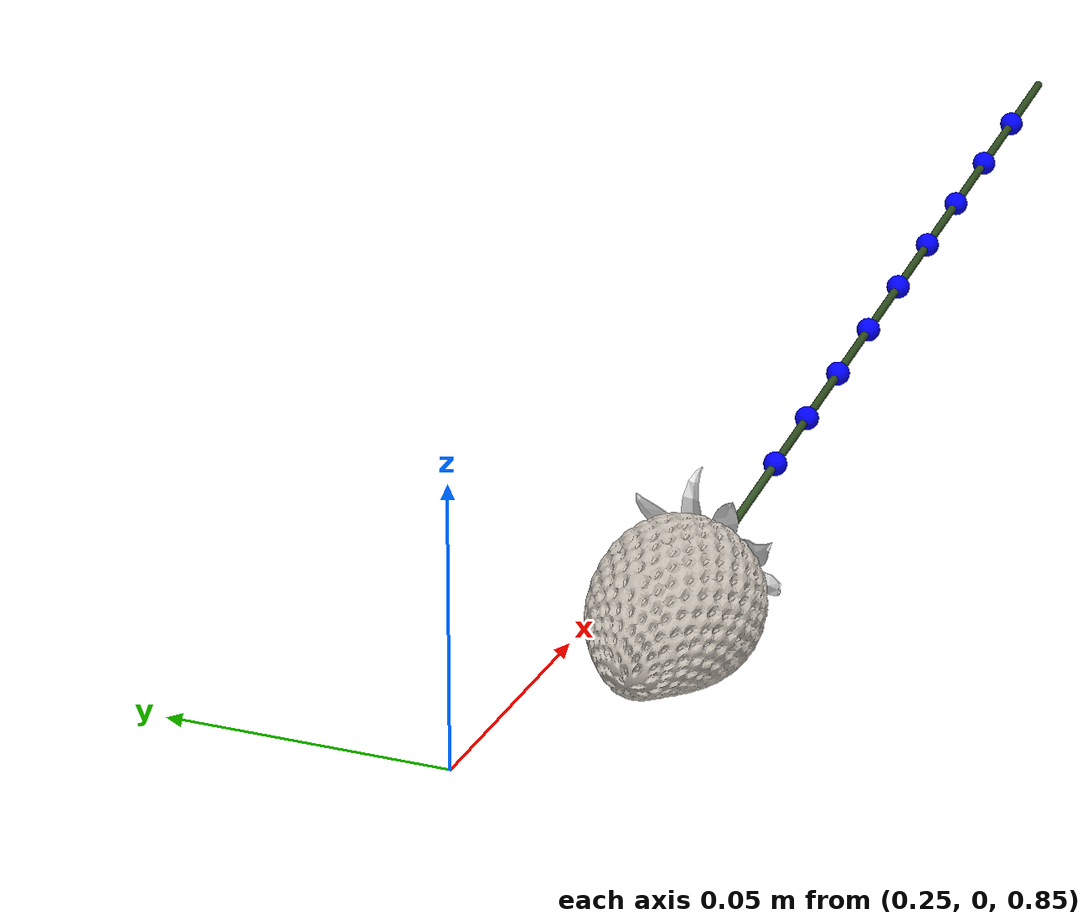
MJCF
<mujoco model="strawb_vine">
  <compiler angle="radian" meshdir="assets/"/>

  <asset>
    <texture name="strawb_leaves" type="2d" file="textures/strawberry_leaves_512.png"/>
    <texture name="strawb_texture" type="2d" file="textures/strawberry_fixed_512.png"/>
    <material name="strawberry_material" texture="strawb_texture" shininess="0.01" specular="0.01" reflectance="0.05" texuniform="true"/>
    <material name="strawberry_leaves" texture="strawb_leaves" shininess="0.1" specular="0.1" reflectance="0.5" texuniform="true"/>
    <mesh name="strawberry" file="strawberry_origin.obj" scale="1.0 1.0 1.0"/>
    <mesh name="strawberry_leaves" file="strawberry_leaves_origin.obj" scale="1.0 1.0 1.0"/>
    <mesh name="strawberry_collision" file="strawberry_collision_origin.obj" scale="1.0 1.0 1.0"/>
  </asset>

  <default>
    <default class="vine_joint">
      <joint type="ball" stiffness="0.02" armature="0.0001" damping="0.01" actuatorfrclimited="false" group="3"/>
    </default>
    <default class="vine_capsule">
      <geom type="capsule" mass="0.0001"
            solref="0.001 1" solimp="0.97 0.995 0.0005 0.5 2"
            rgba="0.18 0.3 0.12 1"/>
    </default>
  </default>

  <worldbody>
    <body name="vine1" pos="0.45 -0.03 0.9" euler="0 3.0 0">
      <body name="aB_first">
        <!-- radius unchanged (0.0007), half-length halved (0.0075) -->
        <geom class="vine_capsule" name="aG0" size="0.0007 0.0075" pos="0.0075 0 0" quat="0.707107 0 -0.707107 0"/>
        <site name="aS_first" pos="0 0 0" group="3"/>

        <!-- Link 1 -->
        <body name="aB_1" pos="0.015 0 0">
          <joint class="vine_joint" name="aJ_1" pos="0 0 0"/>
          <site name="joint_1" pos="0 0 0" rgba="0 0 1 1" size="0.002"/>
          <geom class="vine_capsule" name="aG1" size="0.0007 0.0075" pos="0.0075 0 0" quat="0.707107 0 -0.707107 0"/>

          <!-- Link 2 -->
          <body name="aB_2" pos="0.015 0 0">
            <joint class="vine_joint" name="aJ_2" pos="0 0 0"/>
            <site name="joint_2" pos="0 0 0" rgba="0 0 1 1" size="0.002"/>
            <geom class="vine_capsule" name="aG2" size="0.0007 0.0075" pos="0.0075 0 0" quat="0.707107 0 -0.707107 0"/>

            <!-- Link 3 -->
            <body name="aB_3" pos="0.015 0 0">
              <joint class="vine_joint" name="aJ_3" pos="0 0 0"/>
              <site name="joint_3" pos="0 0 0" rgba="0 0 1 1" size="0.002"/>
              <geom class="vine_capsule" name="aG3" size="0.0007 0.0075" pos="0.0075 0 0" quat="0.707107 0 -0.707107 0"/>

              <!-- Link 4 -->
              <body name="aB_4" pos="0.015 0 0">
                <joint class="vine_joint" name="aJ_4" pos="0 0 0"/>
                <site name="joint_4" pos="0 0 0" rgba="0 0 1 1" size="0.002"/>
                <geom class="vine_capsule" name="aG4" size="0.0007 0.0075" pos="0.0075 0 0" quat="0.707107 0 -0.707107 0"/>

                <!-- Link 5 -->
                <body name="aB_5" pos="0.015 0 0">
                  <joint class="vine_joint" name="aJ_5" pos="0 0 0"/>
                  <site name="joint_5" pos="0 0 0" rgba="0 0 1 1" size="0.002"/>
                  <geom class="vine_capsule" name="aG5" size="0.0007 0.0075" pos="0.0075 0 0" quat="0.707107 0 -0.707107 0"/>

                  <!-- Link 6 -->
                  <body name="aB_6" pos="0.015 0 0">
                    <joint class="vine_joint" name="aJ_6" pos="0 0 0"/>
                    <site name="joint_6" pos="0 0 0" rgba="0 0 1 1" size="0.002"/>
                    <geom class="vine_capsule" name="aG6" size="0.0007 0.0075" pos="0.0075 0 0" quat="0.707107 0 -0.707107 0"/>

                    <!-- Link 7 -->
                    <body name="aB_7" pos="0.015 0 0">
                      <joint class="vine_joint" name="aJ_7" pos="0 0 0"/>
                      <site name="joint_7" pos="0 0 0" rgba="0 0 1 1" size="0.002"/>
                      <geom class="vine_capsule" name="aG7" size="0.0007 0.0075" pos="0.0075 0 0" quat="0.707107 0 -0.707107 0"/>

                      <!-- Link 8 (last) -->
                      <body name="aB_last" pos="0.015 0 0">
                        <joint class="vine_joint" name="aJ_last" pos="0 0 0"/>
                        <site name="joint_last" pos="0 0 0" rgba="0 0 1 1" size="0.002"/>
                        <geom class="vine_capsule" name="aG8" size="0.0007 0.0075" pos="0.0075 0 0" quat="0.707107 0 -0.707107 0"/>
                        <site name="aS_last" pos="0.03 0 0" group="3"/>

                        <!-- Stem and fruit unchanged -->
                        <body name="stem1" pos="0.015 0 0">
                          <joint class="vine_joint" name="stem1" pos="0 0 0"/>
                          <site name="joint_stem1" pos="0 0 0" rgba="0 0 1 1" size="0.002"/>
                          <geom name="stem1" type="capsule" size="0.0007 0.015" pos="0.015 0 0" quat="0.707107 0 -0.707107 0" rgba="0.208 0.337 0.149 1"/>
                          <site name="stem1" pos="0.0001 0.054 -0.0004" size="0.0012" rgba="0 0 1 1" group="3"/>
                          <body name="block1" pos="0.03 0 0" euler="0 0 1.57">
                            <geom name="block1" type="mesh" mesh="strawberry_collision" density="400" group="3"/>
                            <geom name="block1_visual" type="mesh" mesh="strawberry" material="strawberry_material" contype="0" conaffinity="0"/>
                            <geom name="leaves1" type="mesh" mesh="strawberry_leaves" rgba="0.9 0.9 0.9 1.0" material="strawberry_leaves" contype="0" conaffinity="0"/>
                          </body>
                        </body>

                      </body>
                    </body>
                  </body>
                </body>
              </body>
            </body>
          </body>
        </body>
      </body>
    </body>
  </worldbody>

</mujoco>
